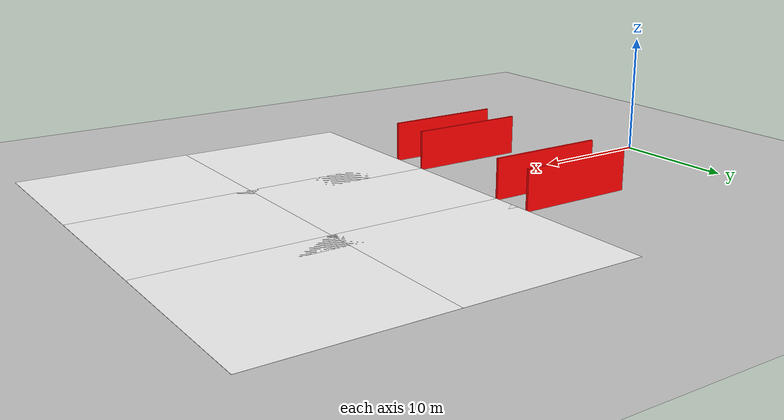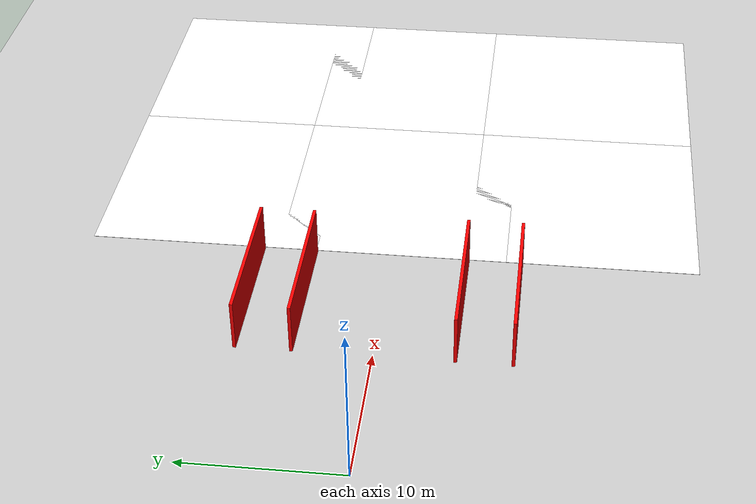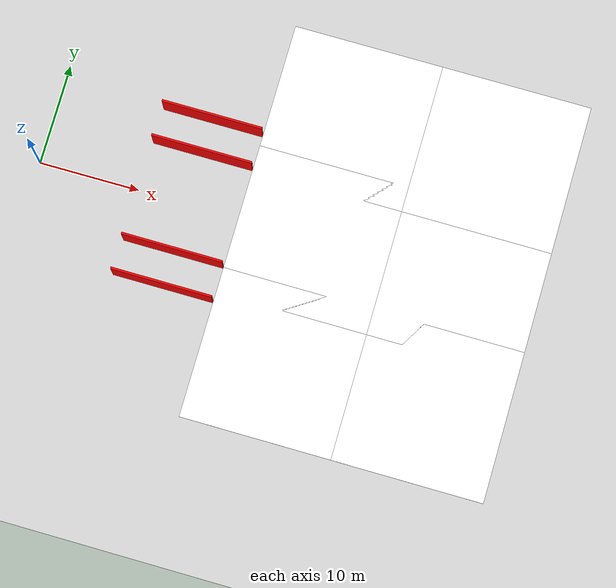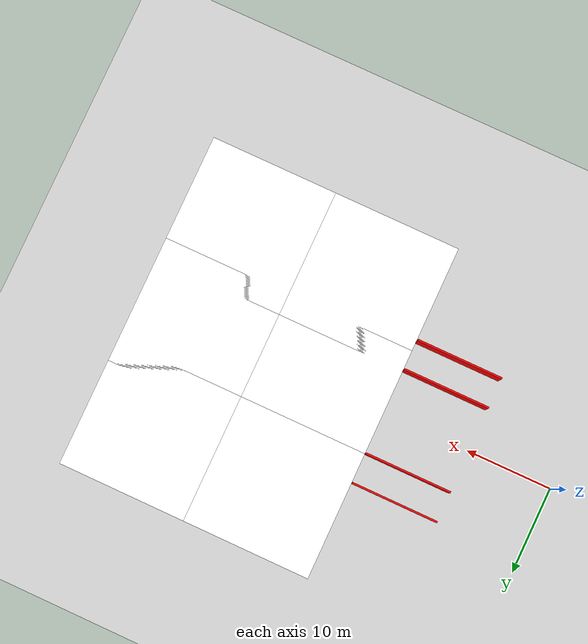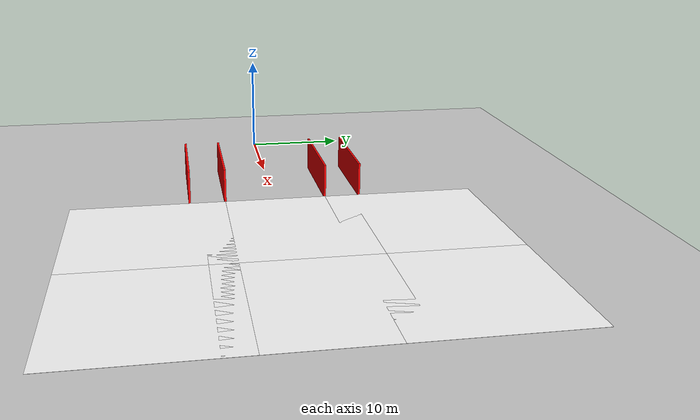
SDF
<sdf version="1.9">
 <world name="empty">
  <physics name="1ms" type="ignored">
   <max_step_size>0.001</max_step_size>
   <real_time_factor>1</real_time_factor>
   <real_time_update_rate>500</real_time_update_rate>
  </physics>
  <plugin name="gz::sim::systems::Physics" filename="gz-sim-physics-system"/>
  <plugin name="gz::sim::systems::UserCommands" filename="gz-sim-user-commands-system"/>
  <plugin name="gz::sim::systems::SceneBroadcaster" filename="gz-sim-scene-broadcaster-system"/>
  <plugin name="gz::sim::systems::Contact" filename="gz-sim-contact-system"/>
  <gravity>0 0 -9.8000000000000007</gravity>
  <magnetic_field>5.5644999999999998e-06 2.2875799999999999e-05 -4.2388400000000002e-05</magnetic_field>
  <atmosphere type="adiabatic"/>
  <scene>
   <ambient>0.400000006 0.400000006 0.400000006 1</ambient>
   <background>0.699999988 0.699999988 0.699999988 1</background>
   <shadows>true</shadows>
  </scene>
  <plugin name="gz::sim::systems::Sensors" filename="gz-sim-sensors-system">
   <render_engine>ogre2</render_engine>
  </plugin>
  <model name="ground_plane">
   <static>true</static>
   <link name="link">
    <collision name="collision">
     <geometry><plane><normal>0 0 1</normal><size>100 100</size></plane></geometry>
    </collision>
    <visual name="visual">
     <geometry><plane><normal>0 0 1</normal><size>100 100</size></plane></geometry>
     <material>
      <ambient>0.800000012 0.800000012 0.800000012 1</ambient>
      <diffuse>0.800000012 0.800000012 0.800000012 1</diffuse>
      <specular>0.800000012 0.800000012 0.800000012 1</specular>
     </material>
    </visual>
    <inertial>
     <mass>1</mass>
     <inertia><ixx>1</ixx><ixy>0</ixy><ixz>0</ixz><iyy>1</iyy><iyz>0</iyz><izz>1</izz></inertia>
    </inertial>
   </link>
  </model>
  <model name="cutout_wall">
   <static>true</static>
   <link name="link">
    <pose>0 0 1.3999999999999999 0 0 0</pose>
    <collision name="collision">
     <geometry><box><size>10 0.20000000000000001 3.7999999999999998</size></box></geometry>
     <surface>
      <contact>
       <collide_without_contact>true</collide_without_contact>
       <collide_without_contact_bitmask>2</collide_without_contact_bitmask>
      </contact>
     </surface>
    </collision>
    <visual name="visual">
     <cast_shadows>false</cast_shadows>
     <geometry><box><size>10 0.20000000000000001 3.7999999999999998</size></box></geometry>
     <material>
      <ambient>1 0 0 1</ambient>
      <diffuse>1 0 0 1</diffuse>
      <specular>0.200000003 0.200000003 0.200000003 1</specular>
     </material>
    </visual>
    <sensor name="mud_contact" type="contact">
     <always_on>true</always_on>
     <update_rate>1000</update_rate>
     <contact><collision>collision</collision><topic>__default_topic__</topic></contact>
    </sensor>
    <inertial>
     <mass>1</mass>
     <inertia><ixx>1</ixx><ixy>0</ixy><ixz>0</ixz><iyy>1</iyy><iyz>0</iyz><izz>1</izz></inertia>
    </inertial>
   </link>
   <pose>15 8.5 0 0 0 0</pose>
  </model>
  <model name="cutout_wall_0">
   <static>true</static>
   <link name="link">
    <pose>0 0 1.3999999999999999 0 0 0</pose>
    <collision name="collision">
     <geometry><box><size>10 0.20000000000000001 3.7999999999999998</size></box></geometry>
     <surface>
      <contact>
       <collide_without_contact>true</collide_without_contact>
       <collide_without_contact_bitmask>2</collide_without_contact_bitmask>
      </contact>
     </surface>
    </collision>
    <visual name="visual">
     <cast_shadows>false</cast_shadows>
     <geometry><box><size>10 0.20000000000000001 3.7999999999999998</size></box></geometry>
     <material>
      <ambient>1 0 0 1</ambient>
      <diffuse>1 0 0 1</diffuse>
      <specular>0.200000003 0.200000003 0.200000003 1</specular>
     </material>
    </visual>
    <sensor name="mud_contact" type="contact">
     <always_on>true</always_on>
     <update_rate>1000</update_rate>
     <contact><collision>collision</collision><topic>__default_topic__</topic></contact>
    </sensor>
    <inertial>
     <mass>1</mass>
     <inertia><ixx>1</ixx><ixy>0</ixy><ixz>0</ixz><iyy>1</iyy><iyz>0</iyz><izz>1</izz></inertia>
    </inertial>
   </link>
   <pose>15 -5 0 0 0 0</pose>
  </model>
  <model name="cutout_wall_1">
   <static>true</static>
   <link name="link">
    <pose>0 0 1.3999999999999999 0 0 0</pose>
    <collision name="collision">
     <geometry><box><size>10 0.20000000000000001 3.7999999999999998</size></box></geometry>
     <surface>
      <contact>
       <collide_without_contact>true</collide_without_contact>
       <collide_without_contact_bitmask>2</collide_without_contact_bitmask>
      </contact>
     </surface>
    </collision>
    <visual name="visual">
     <cast_shadows>false</cast_shadows>
     <geometry><box><size>10 0.20000000000000001 3.7999999999999998</size></box></geometry>
     <material>
      <ambient>1 0 0 1</ambient>
      <diffuse>1 0 0 1</diffuse>
      <specular>0.200000003 0.200000003 0.200000003 1</specular>
     </material>
    </visual>
    <sensor name="mud_contact" type="contact">
     <always_on>true</always_on>
     <update_rate>1000</update_rate>
     <contact><collision>collision</collision><topic>__default_topic__</topic></contact>
    </sensor>
    <inertial>
     <mass>1</mass>
     <inertia><ixx>1</ixx><ixy>0</ixy><ixz>0</ixz><iyy>1</iyy><iyz>0</iyz><izz>1</izz></inertia>
    </inertial>
   </link>
   <pose>15 5 0 0 0 0</pose>
  </model>
  <model name="cutout_wall_2">
   <static>true</static>
   <link name="link">
    <pose>0 0 1.3999999999999999 0 0 0</pose>
    <collision name="collision">
     <geometry><box><size>10 0.20000000000000001 3.7999999999999998</size></box></geometry>
     <surface>
      <contact>
       <collide_without_contact>true</collide_without_contact>
       <collide_without_contact_bitmask>2</collide_without_contact_bitmask>
      </contact>
     </surface>
    </collision>
    <visual name="visual">
     <cast_shadows>false</cast_shadows>
     <geometry><box><size>10 0.20000000000000001 3.7999999999999998</size></box></geometry>
     <material>
      <ambient>1 0 0 1</ambient>
      <diffuse>1 0 0 1</diffuse>
      <specular>0.200000003 0.200000003 0.200000003 1</specular>
     </material>
    </visual>
    <sensor name="mud_contact" type="contact">
     <always_on>true</always_on>
     <update_rate>1000</update_rate>
     <contact><collision>collision</collision><topic>__default_topic__</topic></contact>
    </sensor>
    <inertial>
     <mass>1</mass>
     <inertia><ixx>1</ixx><ixy>0</ixy><ixz>0</ixz><iyy>1</iyy><iyz>0</iyz><izz>1</izz></inertia>
    </inertial>
   </link>
   <pose>15 -8.5 0 0 0 0</pose>
  </model>
  <model name="grasspatch">
   <static>true</static>
   <link name="link">
    <collision name="collision">
     <geometry><plane><normal>0 0 1</normal><size>15 15</size></plane></geometry>
     <surface><friction><ode><mu>0.5</mu><mu2>0.5</mu2></ode></friction></surface>
    </collision>
    <visual name="visual_s10">
     <cast_shadows>false</cast_shadows>
     <geometry><plane><normal>0 0 1</normal><size>15 15</size></plane></geometry>
     <material>
      <diffuse>1 1 1 1</diffuse>
      <specular>1 1 1 1</specular>
      <pbr>
       <metal>
        <albedo_map>grasspatch/materials/textures/grass_dry.png</albedo_map>
        <normal_map>grasspatch/materials/textures/grass_dry.png</normal_map>
       </metal>
      </pbr>
     </material>
    </visual>
    <inertial>
     <mass>1</mass>
     <inertia><ixx>1</ixx><ixy>0</ixy><ixz>0</ixz><iyy>1</iyy><iyz>0</iyz><izz>1</izz></inertia>
    </inertial>
   </link>
   <pose>27.5 12.5 0.050000000000000003 0 0 0</pose>
  </model>
  <model name="grasspatch_0">
   <static>true</static>
   <link name="link">
    <collision name="collision">
     <geometry><plane><normal>0 0 1</normal><size>15 15</size></plane></geometry>
     <surface><friction><ode><mu>0.5</mu><mu2>0.5</mu2></ode></friction></surface>
    </collision>
    <visual name="visual_s10">
     <cast_shadows>false</cast_shadows>
     <geometry><plane><normal>0 0 1</normal><size>15 15</size></plane></geometry>
     <material>
      <diffuse>1 1 1 1</diffuse>
      <specular>1 1 1 1</specular>
      <pbr>
       <metal>
        <albedo_map>grasspatch/materials/textures/grass_dry.png</albedo_map>
        <normal_map>grasspatch/materials/textures/grass_dry.png</normal_map>
       </metal>
      </pbr>
     </material>
    </visual>
    <inertial>
     <mass>1</mass>
     <inertia><ixx>1</ixx><ixy>0</ixy><ixz>0</ixz><iyy>1</iyy><iyz>0</iyz><izz>1</izz></inertia>
    </inertial>
   </link>
   <pose>27.5 -12.5 0.050000000000000003 0 0 0</pose>
  </model>
  <model name="grasspatch_1">
   <static>true</static>
   <link name="link">
    <collision name="collision">
     <geometry><plane><normal>0 0 1</normal><size>15 15</size></plane></geometry>
     <surface><friction><ode><mu>0.5</mu><mu2>0.5</mu2></ode></friction></surface>
    </collision>
    <visual name="visual_s10">
     <cast_shadows>false</cast_shadows>
     <geometry><plane><normal>0 0 1</normal><size>15 15</size></plane></geometry>
     <material>
      <diffuse>1 1 1 1</diffuse>
      <specular>1 1 1 1</specular>
      <pbr>
       <metal>
        <albedo_map>grasspatch/materials/textures/grass_dry.png</albedo_map>
        <normal_map>grasspatch/materials/textures/grass_dry.png</normal_map>
       </metal>
      </pbr>
     </material>
    </visual>
    <inertial>
     <mass>1</mass>
     <inertia><ixx>1</ixx><ixy>0</ixy><ixz>0</ixz><iyy>1</iyy><iyz>0</iyz><izz>1</izz></inertia>
    </inertial>
   </link>
   <pose>42.5 -12.5 0.050000000000000003 0 0 0</pose>
  </model>
  <model name="grasspatch_2">
   <static>true</static>
   <link name="link">
    <collision name="collision">
     <geometry><plane><normal>0 0 1</normal><size>15 15</size></plane></geometry>
     <surface><friction><ode><mu>0.5</mu><mu2>0.5</mu2></ode></friction></surface>
    </collision>
    <visual name="visual_s10">
     <cast_shadows>false</cast_shadows>
     <geometry><plane><normal>0 0 1</normal><size>15 15</size></plane></geometry>
     <material>
      <diffuse>1 1 1 1</diffuse>
      <specular>1 1 1 1</specular>
      <pbr>
       <metal>
        <albedo_map>grasspatch/materials/textures/grass_dry.png</albedo_map>
        <normal_map>grasspatch/materials/textures/grass_dry.png</normal_map>
       </metal>
      </pbr>
     </material>
    </visual>
    <inertial>
     <mass>1</mass>
     <inertia><ixx>1</ixx><ixy>0</ixy><ixz>0</ixz><iyy>1</iyy><iyz>0</iyz><izz>1</izz></inertia>
    </inertial>
   </link>
   <pose>42.5 12.5 0.050000000000000003 0 0 0</pose>
  </model>
  <model name="grasspatch_3">
   <static>true</static>
   <link name="link">
    <collision name="collision">
     <geometry><plane><normal>0 0 1</normal><size>15 15</size></plane></geometry>
     <surface><friction><ode><mu>0.5</mu><mu2>0.5</mu2></ode></friction></surface>
    </collision>
    <visual name="visual_s10">
     <cast_shadows>false</cast_shadows>
     <geometry><plane><normal>0 0 1</normal><size>15 15</size></plane></geometry>
     <material>
      <diffuse>1 1 1 1</diffuse>
      <specular>1 1 1 1</specular>
      <pbr>
       <metal>
        <albedo_map>grasspatch/materials/textures/grass_dry.png</albedo_map>
        <normal_map>grasspatch/materials/textures/grass_dry.png</normal_map>
       </metal>
      </pbr>
     </material>
    </visual>
    <inertial>
     <mass>1</mass>
     <inertia><ixx>1</ixx><ixy>0</ixy><ixz>0</ixz><iyy>1</iyy><iyz>0</iyz><izz>1</izz></inertia>
    </inertial>
   </link>
   <pose>27.5 0 0.050000000000000003 0 0 0</pose>
  </model>
  <model name="grasspatch_4">
   <static>true</static>
   <link name="link">
    <collision name="collision">
     <geometry><plane><normal>0 0 1</normal><size>15 15</size></plane></geometry>
     <surface><friction><ode><mu>0.5</mu><mu2>0.5</mu2></ode></friction></surface>
    </collision>
    <visual name="visual_s10">
     <cast_shadows>false</cast_shadows>
     <geometry><plane><normal>0 0 1</normal><size>15 15</size></plane></geometry>
     <material>
      <diffuse>1 1 1 1</diffuse>
      <specular>1 1 1 1</specular>
      <pbr>
       <metal>
        <albedo_map>grasspatch/materials/textures/grass_dry.png</albedo_map>
        <normal_map>grasspatch/materials/textures/grass_dry.png</normal_map>
       </metal>
      </pbr>
     </material>
    </visual>
    <inertial>
     <mass>1</mass>
     <inertia><ixx>1</ixx><ixy>0</ixy><ixz>0</ixz><iyy>1</iyy><iyz>0</iyz><izz>1</izz></inertia>
    </inertial>
   </link>
   <pose>42.5 0 0.050000000000000003 0 0 0</pose>
  </model>
  <light name="sun" type="directional">
   <pose>0 0 10 0 0 0</pose>
   <intensity>1</intensity>
   <direction>-0.5 0.10000000000000001 -0.90000000000000002</direction>
   <diffuse>0.800000012 0.800000012 0.800000012 1</diffuse>
   <specular>0.200000003 0.200000003 0.200000003 1</specular>
   <attenuation>
    <range>1000</range>
    <linear>0.01</linear>
    <constant>0.90000000000000002</constant>
    <quadratic>0.001</quadratic>
   </attenuation>
   <spot><inner_angle>0</inner_angle><outer_angle>0</outer_angle><falloff>0</falloff></spot>
  </light>
 </world>
</sdf>
